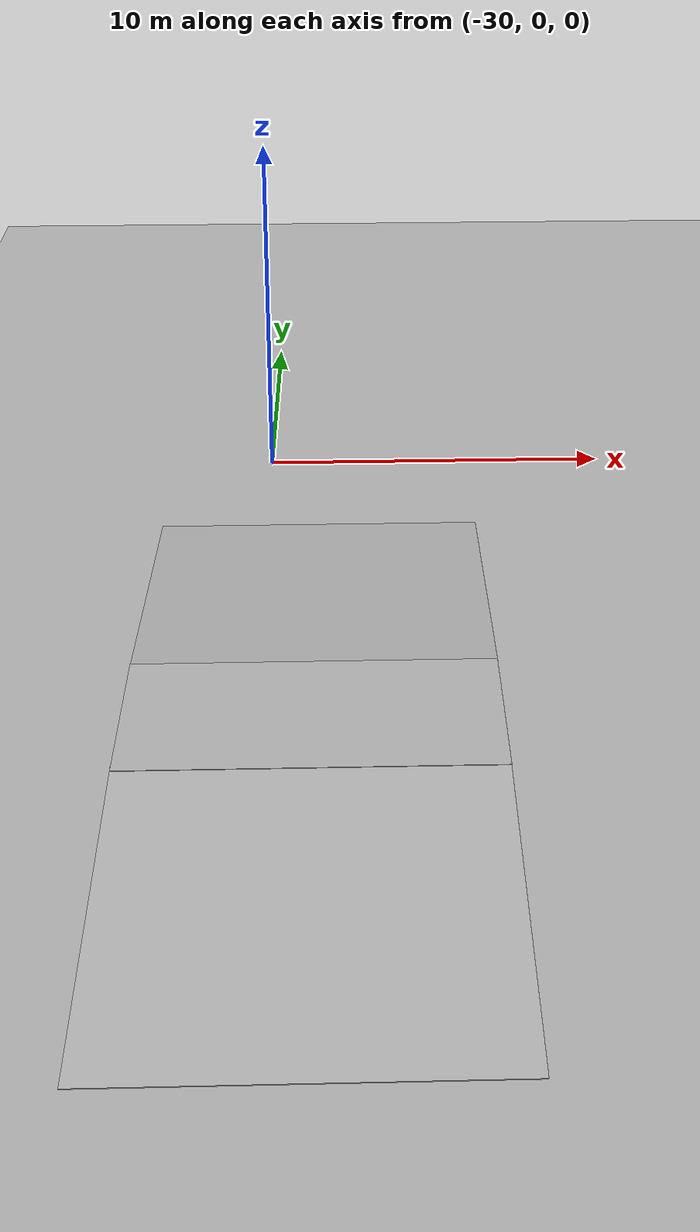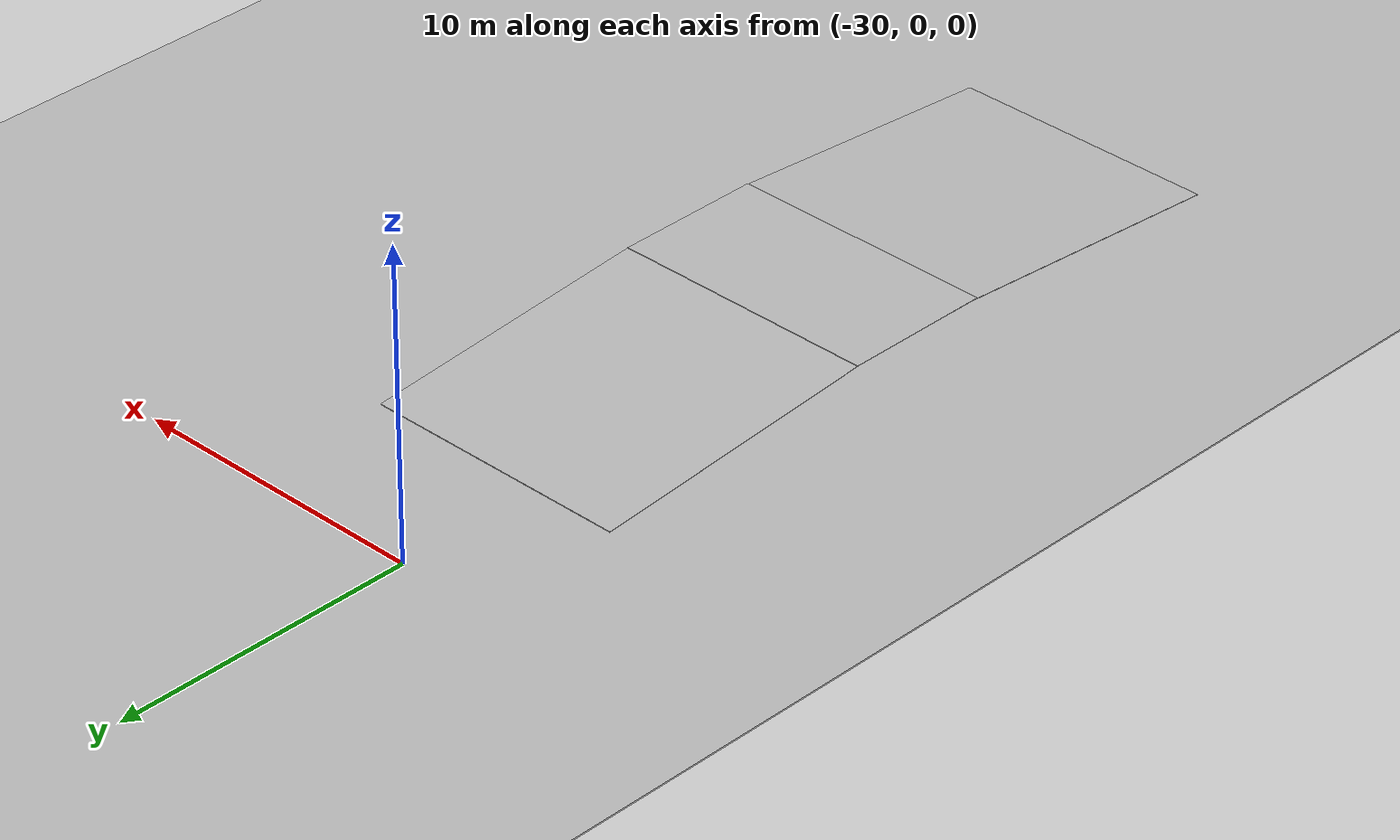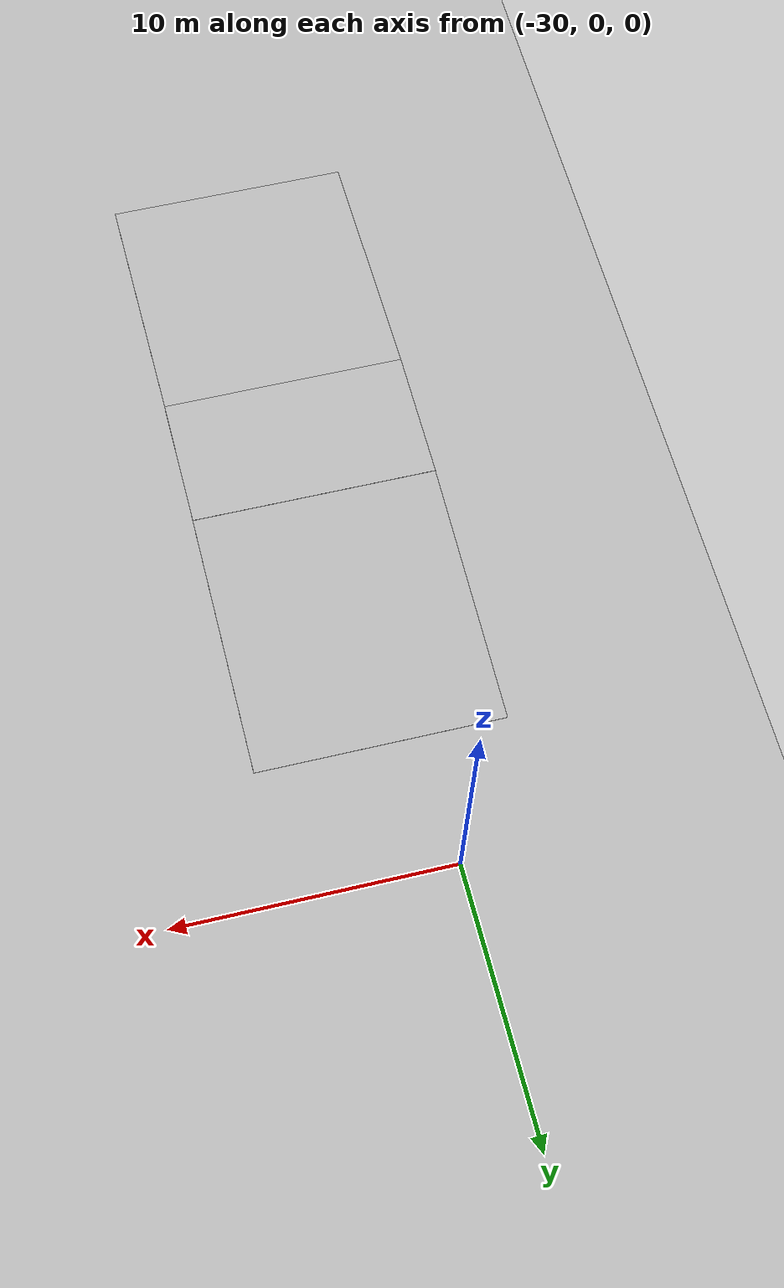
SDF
<sdf version="1.6">
 <world name="default">
  <model name="ground">
   <static>1</static>
   <link name="ground">
    <collision name="ground_coll"><geometry><box><size>83.6 150 0.05</size></box></geometry></collision>
    <visual name="ground_vis">
     <geometry><box><size>83.6 150  0.05</size></box></geometry>
     <material><script><uri>./course.material</uri><name>course</name></script></material>
    </visual>
   </link>
  </model>
  <include><uri>model://sun</uri></include>
  <model name="uphill">
   <pose>-28.5 -9.8 0.5 0 -0.08 -1.57</pose>
   <static>true</static>
   <link name="link">
    <collision name="collision"><geometry><box><size>10 9 0.02</size></box></geometry></collision>
    <visual name="visual">
     <geometry><box><size>10 9 0.02</size></box></geometry>
     <material><script><uri>./uphill.material</uri><name>uphill</name></script></material>
    </visual>
   </link>
  </model>
  <model name="road">
   <pose>-28.5 -17.1 0.9 0 0 -1.57</pose>
   <static>true</static>
   <link name="link">
    <collision name="collision"><geometry><box><size>5 9 0.02</size></box></geometry></collision>
    <visual name="visual">
     <geometry><box><size>5 9 0.02</size></box></geometry>
     <material><script><uri>./downhill.material</uri><name>downhill</name></script></material>
    </visual>
   </link>
  </model>
  <model name="downhill">
   <pose>-28.5 -24.4 0.5 0 0.08 -1.57</pose>
   <static>true</static>
   <link name="link">
    <collision name="collision"><geometry><box><size>10 9 0.02</size></box></geometry></collision>
    <visual name="visual">
     <geometry><box><size>10 9 0.02</size></box></geometry>
     <material><script><uri>./downhill.material</uri><name>downhill</name></script></material>
    </visual>
   </link>
  </model>
 </world>
</sdf>
